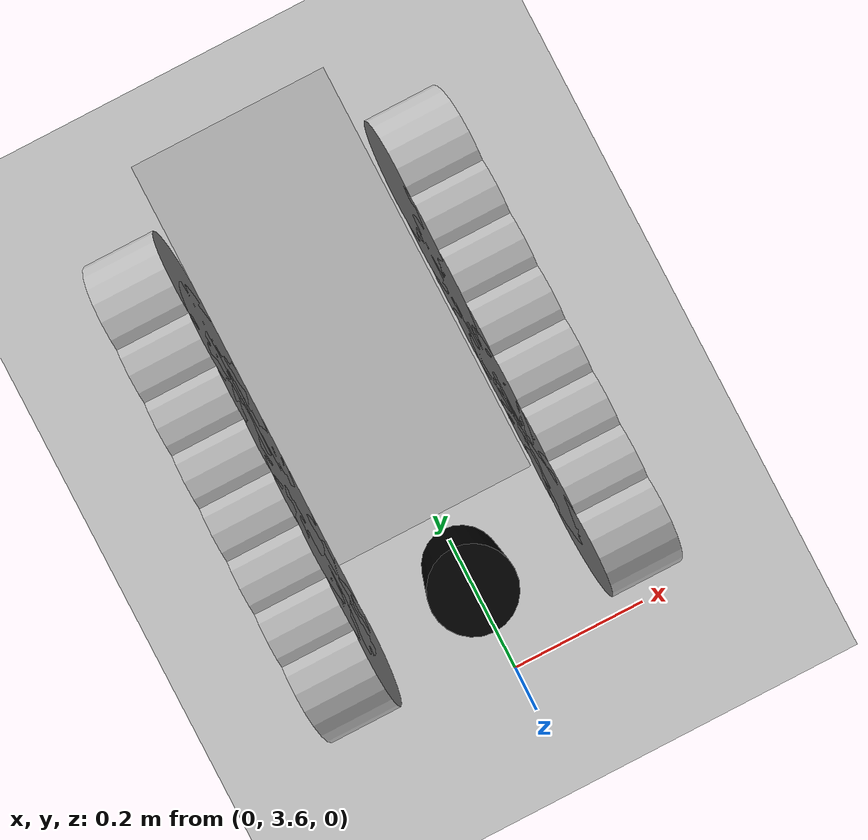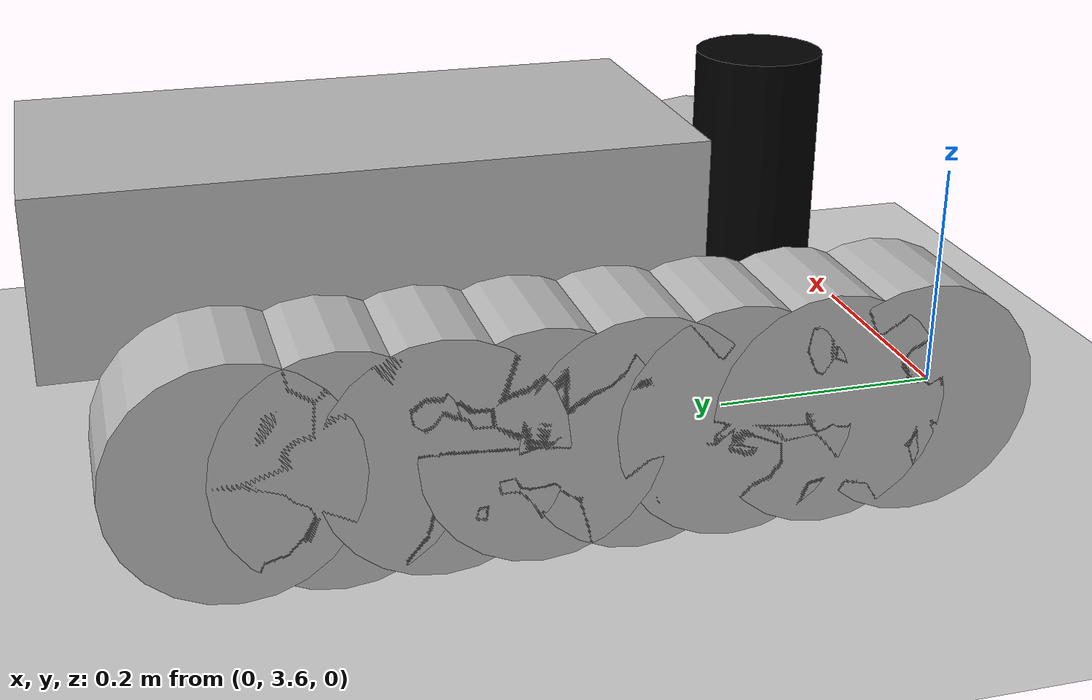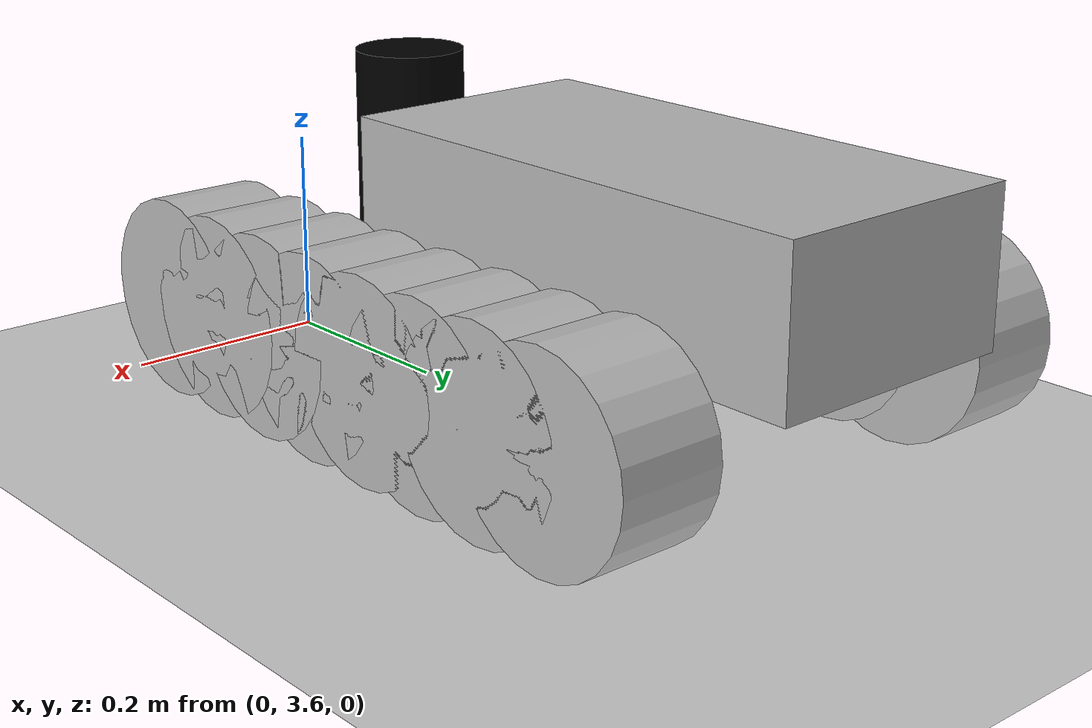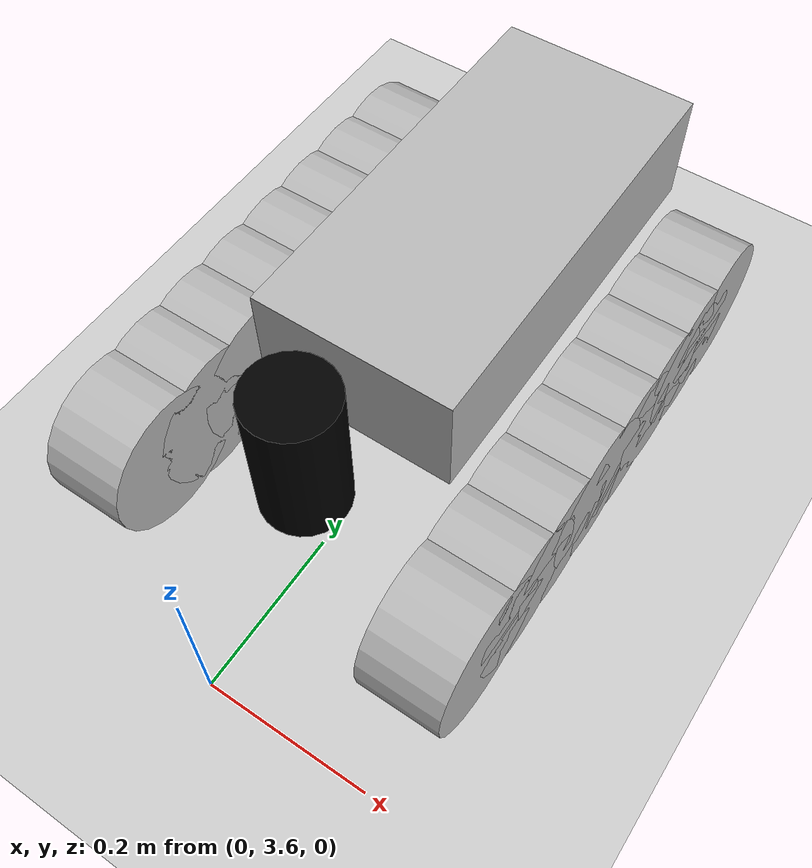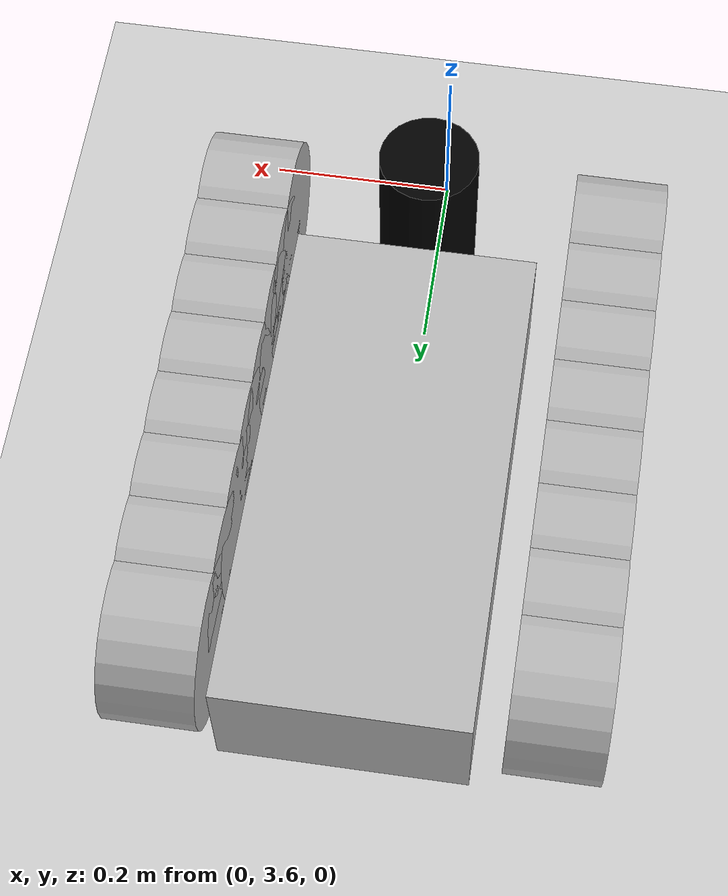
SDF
<sdf version="1.6">
 <world name="default">
  <model name="ground_plane">
   <static>1</static>
   <link name="link">
    <collision name="collision">
     <geometry><plane><normal>0 0 1</normal><size>100 100</size></plane></geometry>
     <surface>
      <contact><collide_bitmask>65535</collide_bitmask></contact>
      <friction><ode><mu>100</mu><mu2>50</mu2></ode></friction>
     </surface>
    </collision>
    <visual name="visual">
     <cast_shadows>0</cast_shadows>
     <geometry><plane><normal>0 0 1</normal><size>100 100</size></plane></geometry>
     <material>
      <script><uri>file://media/materials/scripts/gazebo.material</uri><name>Gazebo/Grey</name></script>
     </material>
    </visual>
   </link>
  </model>
  <model name="wheel_tracked">
   <pose>0 4 0.1 0 0 -1.5708</pose>
   <link name="base_link">
    <inertial>
     <pose>-0.122 0 0.118 1.5708 -0 0</pose>
     <mass>13.14</mass>
     <inertia>
      <ixx>0.10019</ixx>
      <ixy>0</ixy>
      <ixz>0</ixz>
      <iyy>0.345043</iyy>
      <iyz>0</iyz>
      <izz>0.302044</izz>
     </inertia>
    </inertial>
    <collision name="base_link_collision">
     <pose>-0.122 0 0.118 0 -0 0</pose>
     <geometry><box><size>0.50017 0.24093 0.139</size></box></geometry>
    </collision>
    <visual name="base_link_visual">
     <pose>-0.122 0 0.118 0 -0 0</pose>
     <geometry><box><size>0.50017 0.24093 0.139</size></box></geometry>
    </visual>
   </link>
   <link name="left_track">
    <pose>0 0.1985 0 0 -0 0</pose>
    <inertial>
     <mass>2.06</mass>
     <inertia>
      <ixx>0.002731</ixx>
      <ixy>0</ixy>
      <ixz>0</ixz>
      <iyy>0.032554</iyy>
      <iyz>0</iyz>
      <izz>0.031391</izz>
     </inertia>
    </inertial>
    <collision name="left_track_collision">
     <pose>0 0 0.01855 1.5708 -0 1.5708</pose>
     <geometry><box><size>0.009728 0.018094 0.05</size></box></geometry>
     <surface>
      <friction><ode><mu>0.5</mu><mu2>3.19858</mu2></ode></friction>
      <contact><collide_bitmask>0</collide_bitmask></contact>
     </surface>
    </collision>
   </link>
   <joint name="left_track_j" type="revolute">
    <child>left_track</child>
    <parent>base_link</parent>
    <axis>
     <xyz>0 1 0</xyz>
     <limit><lower>0</lower><upper>0</upper><effort>0</effort><velocity>4</velocity></limit>
     <use_parent_model_frame>1</use_parent_model_frame>
    </axis>
   </joint>
   <link name="left_track_wheel1">
    <pose>0.25 0.1985 0.01855 0 -0 0</pose>
    <inertial>
     <mass>0.5</mass>
     <inertia><ixx>0.001</ixx><ixy>0</ixy><ixz>0</ixz><iyy>0.001</iyy><iyz>0</iyz><izz>0.001</izz></inertia>
    </inertial>
    <collision name="left_track_wheel1_collision">
     <pose>0 0 0 1.5708 -0 0</pose>
     <geometry><cylinder><length>0.09728</length><radius>0.09047</radius></cylinder></geometry>
     <surface><friction><ode><mu>0.5</mu><mu2>3.19858</mu2></ode></friction></surface>
    </collision>
    <visual name="left_track_wheel1_visual">
     <pose>0 0 0 1.5708 -0 0</pose>
     <geometry><cylinder><length>0.09728</length><radius>0.09047</radius></cylinder></geometry>
    </visual>
   </link>
   <joint name="left_track_wheel1_j" type="revolute">
    <child>left_track_wheel1</child>
    <parent>left_track</parent>
    <axis>
     <xyz>0 1 0</xyz>
     <limit><lower>-1e+16</lower><upper>1e+16</upper></limit>
     <use_parent_model_frame>1</use_parent_model_frame>
    </axis>
   </joint>
   <link name="left_track_wheel2">
    <pose>0.1786 0.1985 0.01855 0 -0 0</pose>
    <inertial>
     <mass>0.5</mass>
     <inertia><ixx>0.001</ixx><ixy>0</ixy><ixz>0</ixz><iyy>0.001</iyy><iyz>0</iyz><izz>0.001</izz></inertia>
    </inertial>
    <collision name="left_track_wheel2_collision">
     <pose>0 0 0 1.5708 -0 0</pose>
     <geometry><cylinder><length>0.09728</length><radius>0.09047</radius></cylinder></geometry>
     <surface><friction><ode><mu>0.5</mu><mu2>3.19858</mu2></ode></friction></surface>
    </collision>
    <visual name="left_track_wheel2_visual">
     <pose>0 0 0 1.5708 -0 0</pose>
     <geometry><cylinder><length>0.09728</length><radius>0.09047</radius></cylinder></geometry>
    </visual>
   </link>
   <joint name="left_track_wheel2_j" type="revolute">
    <child>left_track_wheel2</child>
    <parent>left_track</parent>
    <axis>
     <xyz>0 1 0</xyz>
     <limit><lower>-1e+16</lower><upper>1e+16</upper></limit>
     <use_parent_model_frame>1</use_parent_model_frame>
    </axis>
   </joint>
   <link name="left_track_wheel3">
    <pose>0.1072 0.1985 0.01855 0 -0 0</pose>
    <inertial>
     <mass>0.5</mass>
     <inertia><ixx>0.001</ixx><ixy>0</ixy><ixz>0</ixz><iyy>0.001</iyy><iyz>0</iyz><izz>0.001</izz></inertia>
    </inertial>
    <collision name="left_track_wheel3_collision">
     <pose>0 0 0 1.5708 -0 0</pose>
     <geometry><cylinder><length>0.09728</length><radius>0.09047</radius></cylinder></geometry>
     <surface><friction><ode><mu>0.5</mu><mu2>3.19858</mu2></ode></friction></surface>
    </collision>
    <visual name="left_track_wheel3_visual">
     <pose>0 0 0 1.5708 -0 0</pose>
     <geometry><cylinder><length>0.09728</length><radius>0.09047</radius></cylinder></geometry>
    </visual>
   </link>
   <joint name="left_track_wheel3_j" type="revolute">
    <child>left_track_wheel3</child>
    <parent>left_track</parent>
    <axis>
     <xyz>0 1 0</xyz>
     <limit><lower>-1e+16</lower><upper>1e+16</upper></limit>
     <use_parent_model_frame>1</use_parent_model_frame>
    </axis>
   </joint>
   <link name="left_track_wheel4">
    <pose>-0.25 0.1985 0.01855 0 -0 0</pose>
    <inertial>
     <mass>0.5</mass>
     <inertia><ixx>0.001</ixx><ixy>0</ixy><ixz>0</ixz><iyy>0.001</iyy><iyz>0</iyz><izz>0.001</izz></inertia>
    </inertial>
    <collision name="left_track_wheel4_collision">
     <pose>0 0 0 1.5708 -0 0</pose>
     <geometry><cylinder><length>0.09728</length><radius>0.09047</radius></cylinder></geometry>
     <surface><friction><ode><mu>0.5</mu><mu2>3.19858</mu2></ode></friction></surface>
    </collision>
    <visual name="left_track_wheel4_visual">
     <pose>0 0 0 1.5708 -0 0</pose>
     <geometry><cylinder><length>0.09728</length><radius>0.09047</radius></cylinder></geometry>
    </visual>
   </link>
   <joint name="left_track_wheel4_j" type="revolute">
    <child>left_track_wheel4</child>
    <parent>left_track</parent>
    <axis>
     <xyz>0 1 0</xyz>
     <limit><lower>-1e+16</lower><upper>1e+16</upper></limit>
     <use_parent_model_frame>1</use_parent_model_frame>
    </axis>
   </joint>
   <link name="left_track_wheel5">
    <pose>-0.0358 0.1985 0.01855 0 -0 0</pose>
    <inertial>
     <mass>0.5</mass>
     <inertia><ixx>0.001</ixx><ixy>0</ixy><ixz>0</ixz><iyy>0.001</iyy><iyz>0</iyz><izz>0.001</izz></inertia>
    </inertial>
    <collision name="left_track_wheel5_collision">
     <pose>0 0 0 1.5708 -0 0</pose>
     <geometry><cylinder><length>0.09728</length><radius>0.09047</radius></cylinder></geometry>
     <surface><friction><ode><mu>0.5</mu><mu2>3.19858</mu2></ode></friction></surface>
    </collision>
    <visual name="left_track_wheel5_visual">
     <pose>0 0 0 1.5708 -0 0</pose>
     <geometry><cylinder><length>0.09728</length><radius>0.09047</radius></cylinder></geometry>
    </visual>
   </link>
   <joint name="left_track_wheel5_j" type="revolute">
    <child>left_track_wheel5</child>
    <parent>left_track</parent>
    <axis>
     <xyz>0 1 0</xyz>
     <limit><lower>-1e+16</lower><upper>1e+16</upper></limit>
     <use_parent_model_frame>1</use_parent_model_frame>
    </axis>
   </joint>
   <link name="left_track_wheel6">
    <pose>-0.1072 0.1985 0.01855 0 -0 0</pose>
    <inertial>
     <mass>0.5</mass>
     <inertia><ixx>0.001</ixx><ixy>0</ixy><ixz>0</ixz><iyy>0.001</iyy><iyz>0</iyz><izz>0.001</izz></inertia>
    </inertial>
    <collision name="left_track_wheel6_collision">
     <pose>0 0 0 1.5708 -0 0</pose>
     <geometry><cylinder><length>0.09728</length><radius>0.09047</radius></cylinder></geometry>
     <surface><friction><ode><mu>0.5</mu><mu2>3.19858</mu2></ode></friction></surface>
    </collision>
    <visual name="left_track_wheel6_visual">
     <pose>0 0 0 1.5708 -0 0</pose>
     <geometry><cylinder><length>0.09728</length><radius>0.09047</radius></cylinder></geometry>
    </visual>
   </link>
   <joint name="left_track_wheel6_j" type="revolute">
    <child>left_track_wheel6</child>
    <parent>left_track</parent>
    <axis>
     <xyz>0 1 0</xyz>
     <limit><lower>-1e+16</lower><upper>1e+16</upper></limit>
     <use_parent_model_frame>1</use_parent_model_frame>
    </axis>
   </joint>
   <link name="left_track_wheel7">
    <pose>-0.1786 0.1985 0.01855 0 -0 0</pose>
    <inertial>
     <mass>0.5</mass>
     <inertia><ixx>0.001</ixx><ixy>0</ixy><ixz>0</ixz><iyy>0.001</iyy><iyz>0</iyz><izz>0.001</izz></inertia>
    </inertial>
    <collision name="left_track_wheel7_collision">
     <pose>0 0 0 1.5708 -0 0</pose>
     <geometry><cylinder><length>0.09728</length><radius>0.09047</radius></cylinder></geometry>
     <surface><friction><ode><mu>0.5</mu><mu2>3.19858</mu2></ode></friction></surface>
    </collision>
    <visual name="left_track_wheel7_visual">
     <pose>0 0 0 1.5708 -0 0</pose>
     <geometry><cylinder><length>0.09728</length><radius>0.09047</radius></cylinder></geometry>
    </visual>
   </link>
   <joint name="left_track_wheel7_j" type="revolute">
    <child>left_track_wheel7</child>
    <parent>left_track</parent>
    <axis>
     <xyz>0 1 0</xyz>
     <limit><lower>-1e+16</lower><upper>1e+16</upper></limit>
     <use_parent_model_frame>1</use_parent_model_frame>
    </axis>
   </joint>
   <link name="left_track_wheel8">
    <pose>0.0358 0.1985 0.01855 0 -0 0</pose>
    <inertial>
     <mass>0.5</mass>
     <inertia><ixx>0.001</ixx><ixy>0</ixy><ixz>0</ixz><iyy>0.001</iyy><iyz>0</iyz><izz>0.001</izz></inertia>
    </inertial>
    <collision name="left_track_wheel8_collision">
     <pose>0 0 0 1.5708 -0 0</pose>
     <geometry><cylinder><length>0.09728</length><radius>0.09047</radius></cylinder></geometry>
     <surface><friction><ode><mu>0.5</mu><mu2>3.19858</mu2></ode></friction></surface>
    </collision>
    <visual name="left_track_wheel8_visual">
     <pose>0 0 0 1.5708 -0 0</pose>
     <geometry><cylinder><length>0.09728</length><radius>0.09047</radius></cylinder></geometry>
    </visual>
   </link>
   <joint name="left_track_wheel8_j" type="revolute">
    <child>left_track_wheel8</child>
    <parent>left_track</parent>
    <axis>
     <xyz>0 1 0</xyz>
     <limit><lower>-1e+16</lower><upper>1e+16</upper></limit>
     <use_parent_model_frame>1</use_parent_model_frame>
    </axis>
   </joint>
   <link name="right_track">
    <pose>0 -0.1985 0 0 -0 0</pose>
    <inertial>
     <mass>2.06</mass>
     <inertia>
      <ixx>0.002731</ixx>
      <ixy>0</ixy>
      <ixz>0</ixz>
      <iyy>0.032554</iyy>
      <iyz>0</iyz>
      <izz>0.031391</izz>
     </inertia>
    </inertial>
    <collision name="right_track_collision">
     <pose>0 0 0.01855 1.5708 -0 1.5708</pose>
     <geometry><box><size>0.009728 0.018094 0.05</size></box></geometry>
     <surface>
      <friction><ode><mu>0.5</mu><mu2>3.19858</mu2></ode></friction>
      <contact><collide_bitmask>0</collide_bitmask></contact>
     </surface>
    </collision>
   </link>
   <joint name="right_track_j" type="revolute">
    <child>right_track</child>
    <parent>base_link</parent>
    <axis>
     <xyz>0 1 0</xyz>
     <limit><lower>0</lower><upper>0</upper><effort>0</effort><velocity>4</velocity></limit>
     <use_parent_model_frame>1</use_parent_model_frame>
    </axis>
   </joint>
   <link name="right_track_wheel1">
    <pose>0.25 -0.1985 0.01855 0 -0 0</pose>
    <inertial>
     <mass>0.5</mass>
     <inertia><ixx>0.001</ixx><ixy>0</ixy><ixz>0</ixz><iyy>0.001</iyy><iyz>0</iyz><izz>0.001</izz></inertia>
    </inertial>
    <collision name="right_track_wheel1_collision">
     <pose>0 0 0 1.5708 -0 0</pose>
     <geometry><cylinder><length>0.09728</length><radius>0.09047</radius></cylinder></geometry>
     <surface><friction><ode><mu>0.5</mu><mu2>3.19858</mu2></ode></friction></surface>
    </collision>
    <visual name="right_track_wheel1_visual">
     <pose>0 0 0 1.5708 -0 0</pose>
     <geometry><cylinder><length>0.09728</length><radius>0.09047</radius></cylinder></geometry>
    </visual>
   </link>
   <joint name="right_track_wheel1_j" type="revolute">
    <child>right_track_wheel1</child>
    <parent>right_track</parent>
    <axis>
     <xyz>0 1 0</xyz>
     <limit><lower>-1e+16</lower><upper>1e+16</upper></limit>
     <use_parent_model_frame>1</use_parent_model_frame>
    </axis>
   </joint>
   <link name="right_track_wheel2">
    <pose>0.1786 -0.1985 0.01855 0 -0 0</pose>
    <inertial>
     <mass>0.5</mass>
     <inertia><ixx>0.001</ixx><ixy>0</ixy><ixz>0</ixz><iyy>0.001</iyy><iyz>0</iyz><izz>0.001</izz></inertia>
    </inertial>
    <collision name="right_track_wheel2_collision">
     <pose>0 0 0 1.5708 -0 0</pose>
     <geometry><cylinder><length>0.09728</length><radius>0.09047</radius></cylinder></geometry>
     <surface><friction><ode><mu>0.5</mu><mu2>3.19858</mu2></ode></friction></surface>
    </collision>
    <visual name="right_track_wheel2_visual">
     <pose>0 0 0 1.5708 -0 0</pose>
     <geometry><cylinder><length>0.09728</length><radius>0.09047</radius></cylinder></geometry>
    </visual>
   </link>
   <joint name="right_track_wheel2_j" type="revolute">
    <child>right_track_wheel2</child>
    <parent>right_track</parent>
    <axis>
     <xyz>0 1 0</xyz>
     <limit><lower>-1e+16</lower><upper>1e+16</upper></limit>
     <use_parent_model_frame>1</use_parent_model_frame>
    </axis>
   </joint>
   <link name="right_track_wheel3">
    <pose>0.1072 -0.1985 0.01855 0 -0 0</pose>
    <inertial>
     <mass>0.5</mass>
     <inertia><ixx>0.001</ixx><ixy>0</ixy><ixz>0</ixz><iyy>0.001</iyy><iyz>0</iyz><izz>0.001</izz></inertia>
    </inertial>
    <collision name="right_track_wheel3_collision">
     <pose>0 0 0 1.5708 -0 0</pose>
     <geometry><cylinder><length>0.09728</length><radius>0.09047</radius></cylinder></geometry>
     <surface><friction><ode><mu>0.5</mu><mu2>3.19858</mu2></ode></friction></surface>
    </collision>
    <visual name="right_track_wheel3_visual">
     <pose>0 0 0 1.5708 -0 0</pose>
     <geometry><cylinder><length>0.09728</length><radius>0.09047</radius></cylinder></geometry>
    </visual>
   </link>
   <joint name="right_track_wheel3_j" type="revolute">
    <child>right_track_wheel3</child>
    <parent>right_track</parent>
    <axis>
     <xyz>0 1 0</xyz>
     <limit><lower>-1e+16</lower><upper>1e+16</upper></limit>
     <use_parent_model_frame>1</use_parent_model_frame>
    </axis>
   </joint>
   <link name="right_track_wheel4">
    <pose>-0.25 -0.1985 0.01855 0 -0 0</pose>
    <inertial>
     <mass>0.5</mass>
     <inertia><ixx>0.001</ixx><ixy>0</ixy><ixz>0</ixz><iyy>0.001</iyy><iyz>0</iyz><izz>0.001</izz></inertia>
    </inertial>
    <collision name="right_track_wheel4_collision">
     <pose>0 0 0 1.5708 -0 0</pose>
     <geometry><cylinder><length>0.09728</length><radius>0.09047</radius></cylinder></geometry>
     <surface><friction><ode><mu>0.5</mu><mu2>3.19858</mu2></ode></friction></surface>
    </collision>
    <visual name="right_track_wheel4_visual">
     <pose>0 0 0 1.5708 -0 0</pose>
     <geometry><cylinder><length>0.09728</length><radius>0.09047</radius></cylinder></geometry>
    </visual>
   </link>
   <joint name="right_track_wheel4_j" type="revolute">
    <child>right_track_wheel4</child>
    <parent>right_track</parent>
    <axis>
     <xyz>0 1 0</xyz>
     <limit><lower>-1e+16</lower><upper>1e+16</upper></limit>
     <use_parent_model_frame>1</use_parent_model_frame>
    </axis>
   </joint>
   <link name="right_track_wheel5">
    <pose>-0.0358 -0.1985 0.01855 0 -0 0</pose>
    <inertial>
     <mass>0.5</mass>
     <inertia><ixx>0.001</ixx><ixy>0</ixy><ixz>0</ixz><iyy>0.001</iyy><iyz>0</iyz><izz>0.001</izz></inertia>
    </inertial>
    <collision name="right_track_wheel5_collision">
     <pose>0 0 0 1.5708 -0 0</pose>
     <geometry><cylinder><length>0.09728</length><radius>0.09047</radius></cylinder></geometry>
     <surface><friction><ode><mu>0.5</mu><mu2>3.19858</mu2></ode></friction></surface>
    </collision>
    <visual name="right_track_wheel5_visual">
     <pose>0 0 0 1.5708 -0 0</pose>
     <geometry><cylinder><length>0.09728</length><radius>0.09047</radius></cylinder></geometry>
    </visual>
   </link>
   <joint name="right_track_wheel5_j" type="revolute">
    <child>right_track_wheel5</child>
    <parent>right_track</parent>
    <axis>
     <xyz>0 1 0</xyz>
     <limit><lower>-1e+16</lower><upper>1e+16</upper></limit>
     <use_parent_model_frame>1</use_parent_model_frame>
    </axis>
   </joint>
   <link name="right_track_wheel6">
    <pose>-0.1072 -0.1985 0.01855 0 -0 0</pose>
    <inertial>
     <mass>0.5</mass>
     <inertia><ixx>0.001</ixx><ixy>0</ixy><ixz>0</ixz><iyy>0.001</iyy><iyz>0</iyz><izz>0.001</izz></inertia>
    </inertial>
    <collision name="right_track_wheel6_collision">
     <pose>0 0 0 1.5708 -0 0</pose>
     <geometry><cylinder><length>0.09728</length><radius>0.09047</radius></cylinder></geometry>
     <surface><friction><ode><mu>0.5</mu><mu2>3.19858</mu2></ode></friction></surface>
    </collision>
    <visual name="right_track_wheel6_visual">
     <pose>0 0 0 1.5708 -0 0</pose>
     <geometry><cylinder><length>0.09728</length><radius>0.09047</radius></cylinder></geometry>
    </visual>
   </link>
   <joint name="right_track_wheel6_j" type="revolute">
    <child>right_track_wheel6</child>
    <parent>right_track</parent>
    <axis>
     <xyz>0 1 0</xyz>
     <limit><lower>-1e+16</lower><upper>1e+16</upper></limit>
     <use_parent_model_frame>1</use_parent_model_frame>
    </axis>
   </joint>
   <link name="right_track_wheel7">
    <pose>-0.1786 -0.1985 0.01855 0 -0 0</pose>
    <inertial>
     <mass>0.5</mass>
     <inertia><ixx>0.001</ixx><ixy>0</ixy><ixz>0</ixz><iyy>0.001</iyy><iyz>0</iyz><izz>0.001</izz></inertia>
    </inertial>
    <collision name="right_track_wheel7_collision">
     <pose>0 0 0 1.5708 -0 0</pose>
     <geometry><cylinder><length>0.09728</length><radius>0.09047</radius></cylinder></geometry>
     <surface><friction><ode><mu>0.5</mu><mu2>3.19858</mu2></ode></friction></surface>
    </collision>
    <visual name="right_track_wheel7_visual">
     <pose>0 0 0 1.5708 -0 0</pose>
     <geometry><cylinder><length>0.09728</length><radius>0.09047</radius></cylinder></geometry>
    </visual>
   </link>
   <joint name="right_track_wheel7_j" type="revolute">
    <child>right_track_wheel7</child>
    <parent>right_track</parent>
    <axis>
     <xyz>0 1 0</xyz>
     <limit><lower>-1e+16</lower><upper>1e+16</upper></limit>
     <use_parent_model_frame>1</use_parent_model_frame>
    </axis>
   </joint>
   <link name="right_track_wheel8">
    <pose>0.0358 -0.1985 0.01855 0 -0 0</pose>
    <inertial>
     <mass>0.5</mass>
     <inertia><ixx>0.001</ixx><ixy>0</ixy><ixz>0</ixz><iyy>0.001</iyy><iyz>0</iyz><izz>0.001</izz></inertia>
    </inertial>
    <collision name="right_track_wheel8_collision">
     <pose>0 0 0 1.5708 -0 0</pose>
     <geometry><cylinder><length>0.09728</length><radius>0.09047</radius></cylinder></geometry>
     <surface><friction><ode><mu>0.5</mu><mu2>3.19858</mu2></ode></friction></surface>
    </collision>
    <visual name="right_track_wheel8_visual">
     <pose>0 0 0 1.5708 -0 0</pose>
     <geometry><cylinder><length>0.09728</length><radius>0.09047</radius></cylinder></geometry>
    </visual>
   </link>
   <joint name="right_track_wheel8_j" type="revolute">
    <child>right_track_wheel8</child>
    <parent>right_track</parent>
    <axis>
     <xyz>0 1 0</xyz>
     <limit><lower>-1e+16</lower><upper>1e+16</upper></limit>
     <use_parent_model_frame>1</use_parent_model_frame>
    </axis>
   </joint>
   <link name="lidar_link">
    <inertial>
     <pose>0.215 0 0.33 0 0 0</pose>
     <inertia>
      <ixx>0.001</ixx>
      <ixy>0.000</ixy>
      <ixz>0.000</ixz>
      <iyy>0.001</iyy>
      <iyz>0.000</iyz>
      <izz>0.001</izz>
     </inertia>
     <mass>0.114</mass>
    </inertial>
    <collision name="lidar_collision">
     <pose>0.215 0 0.13 0 0 0</pose>
     <geometry><cylinder><radius>0.0508</radius><length>0.18</length></cylinder></geometry>
    </collision>
    <visual name="lidar_visual">
     <pose>0.215 0 0.13 0 0 0</pose>
     <geometry><cylinder><radius>0.0508</radius><length>0.18</length></cylinder></geometry>
     <material>
      <ambient>0.0 0.0 0.0 1.0</ambient>
      <diffuse>0.0 0.0 0.0 1.0</diffuse>
      <specular>0.0 0.0 0.0 1.0</specular>
      <emissive>0.0 0.0 0.0 1.0</emissive>
     </material>
    </visual>
    <sensor name="lidar" type="ray">
     <pose>0.215 0 0.215 0 0 0</pose>
     <always_on>true</always_on>
     <visualize>true</visualize>
     <update_rate>5</update_rate>
     <ray>
      <scan>
       <horizontal>
        <samples>360</samples>
        <resolution>1.00000</resolution>
        <min_angle>0.000000</min_angle>
        <max_angle>6.280000</max_angle>
       </horizontal>
       <vertical>
        <samples>16</samples>
        <resolution>1</resolution>
        <min_angle>-0.361799</min_angle>
        <max_angle>0.261799</max_angle>
       </vertical>
      </scan>
      <range><min>0.120000</min><max>7</max><resolution>0.015000</resolution></range>
      <noise><type>gaussian</type><mean>0.0</mean><stddev>0.01</stddev></noise>
     </ray>
     <plugin name="scan" filename="libgazebo_ros_ray_sensor.so">
      <ros><remapping>~/out:=scan</remapping></ros>
      <output_type>sensor_msgs/LaserScan</output_type>
      <frame_name>lidar_link</frame_name>
     </plugin>
    </sensor>
   </link>
   <joint name="lidar_joint" type="fixed"><parent>base_link</parent><child>lidar_link</child></joint>
   <plugin name="wheel_tracked_vehicle_controller" filename="libWheelTrackedVehiclePlugin.so">
    <left_joint>left_track_wheel1_j</left_joint>
    <right_joint>right_track_wheel1_j</right_joint>
    <left_joint>left_track_wheel2_j</left_joint>
    <right_joint>right_track_wheel2_j</right_joint>
    <left_joint>left_track_wheel3_j</left_joint>
    <right_joint>right_track_wheel3_j</right_joint>
    <left_joint>left_track_wheel4_j</left_joint>
    <right_joint>right_track_wheel4_j</right_joint>
    <left_joint>left_track_wheel5_j</left_joint>
    <right_joint>right_track_wheel5_j</right_joint>
    <left_joint>left_track_wheel6_j</left_joint>
    <right_joint>right_track_wheel6_j</right_joint>
    <left_joint>left_track_wheel7_j</left_joint>
    <right_joint>right_track_wheel7_j</right_joint>
    <left_joint>left_track_wheel8_j</left_joint>
    <right_joint>right_track_wheel8_j</right_joint>
    <track_mu>1.0</track_mu>
    <track_mu2>0.5</track_mu2>
   </plugin>
   <plugin filename="libKeysToCmdVelPlugin.so" name="keyboard_control">
    <cmd_vel_topic>~/wheel_tracked/cmd_vel</cmd_vel_topic>
    <key_controls>
     <stop>13</stop>
     <stop>32</stop>
     <accelerate>119</accelerate>
     <decelerate>115</decelerate>
     <left>97</left>
     <right>100</right>
    </key_controls>
   </plugin>
  </model>
 </world>
</sdf>
